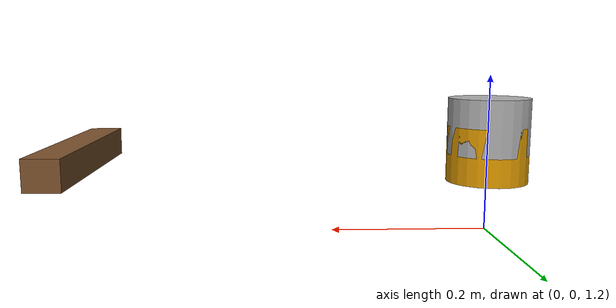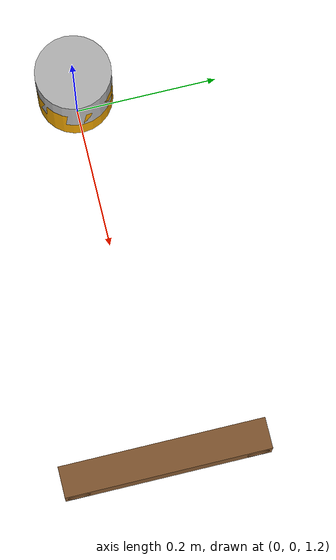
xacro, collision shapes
<?xml version="1.0"?>
<robot xmlns:xacro="http://www.ros.org/wiki/xacro" name="velodyne_xb3">
    <!-- property -->
    <xacro:property name="M_PI" value="3.1415926535897931" />

    <!-- velodyne:  vlp16 hdl32 hdl64 -->
    <xacro:arg name="velodyne" default="vlp16"/>
    <xacro:arg name="velodyne_x" default="0.0"/>
    <xacro:arg name="velodyne_y" default="0.0"/>
    <xacro:arg name="velodyne_z" default="1.3"/>
    <xacro:arg name="velodyne_roll" default="0.0"/>
    <xacro:arg name="velodyne_pitch" default="0.0"/>
    <xacro:arg name="velodyne_yaw" default="0.0"/>

    <xacro:arg name="K" default="0"/>
    <xacro:arg name="rate" default="10"/>
    <xacro:property name="K" default="$(arg K)"/>
    <xacro:property name="noise" value="${K * 0.000}" />

    <!-- xb3 -->
    <xacro:arg name="xb3_x" default="0.5"/>
    <xacro:arg name="xb3_y" default="0.0"/>
    <xacro:arg name="xb3_z" default="1.3"/>
    <xacro:arg name="xb3_roll" default="0.0"/>
    <xacro:arg name="xb3_pitch" default="0.0"/>
    <xacro:arg name="xb3_yaw" default="0.0"/>

    <!-- base -->
    <link name="world"/>

    <joint name="fixed" type="fixed">
        <parent link="world"/>
        <child link="base_link"/>
    </joint>

    <link name="base_link"/>

    <!-- xb3 -->
    <xacro:include filename="$(find sensors_description)/urdf/bumblebee_xb3.urdf.xacro"/>
    <xacro:xb3_camera parent="base_link" camera_name="xb3" noise="0.007">
        <origin xyz="$(arg xb3_x) $(arg xb3_y) $(arg xb3_z)" rpy="$(arg xb3_roll) $(arg xb3_pitch) $(arg xb3_yaw)" />
    </xacro:xb3_camera>

    <!-- velodyne -->
    <xacro:include filename="$(find sensors_description)/urdf/$(arg velodyne).urdf.xacro"/>
    <xacro:velodyne parent="base_link" name="$(arg velodyne)" topic="velodyne_points" rate="$(arg rate)" noise="${noise}">
        <origin xyz="$(arg velodyne_x) $(arg velodyne_y) $(arg velodyne_z)" rpy="$(arg velodyne_roll) $(arg velodyne_pitch) $(arg velodyne_yaw)" />
    </xacro:velodyne>

</robot>

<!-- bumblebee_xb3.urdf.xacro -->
<robot xmlns:xacro="http://www.ros.org/wiki/xacro" name="bumblebee_xb3">

    <!-- Properties -->
    <xacro:property name="baseline" value="0.12" />
    <xacro:property name="hfov" value="43.0000245" />
    <xacro:property name="M_PI"     value="3.1415926535897931" />

    <!-- Includes -->
    <xacro:include filename="$(find sensors_description)/materials/materials.xacro" />

    <!-- Macro -->
<xacro:macro name="xb3_camera" params="*origin parent:=base_frame camera_name:=bumblebee_xb3 image_width:=1280 image_height:=960 hz:=10 image_format:=B8G8R8 noise:=0.0">

    <!-- Camera body -->
    <joint name="${camera_name}_base_joint" type="fixed">
        <parent link="${parent}"/>
        <child link="${camera_name}_body"/>
        <xacro:insert_block name="origin" />
    </joint>

    <link name="${camera_name}_body">
        <inertial>
            <origin
            xyz="0.020768 7.8916E-18 2.5641E-17"
            rpy="0 0 0" />
        <mass
            value="0.20853" />
        <inertia
            ixx="0.0013461"
            ixy="-2.3692E-21"
            ixz="2.8955E-21"
            iyy="0.0013522"
            iyz="-5.06773623737804E-20"
            izz="5.3883E-05" />
        </inertial>
        <visual>
            <origin xyz="0 0 0" rpy="0 0 0"/>
            <geometry>
                <mesh filename="package://sensors_description/meshes/xb3.stl" />
            </geometry>
            <material name="brown" />
        </visual>
        <collision>
            <origin rpy="0 0 0" xyz="0 0 0"/>
            <geometry>
                <mesh filename="package://sensors_description/meshes/xb3.stl" />
            </geometry>
        </collision>
    </link>

    <gazebo reference="${camera_name}_body">
        <material>Gazebo/Black</material>
    </gazebo>

    <!-- Left Camera -->
    <joint name="${camera_name}_left_camera_joint" type="fixed">
        <parent link="${camera_name}_body"/>
        <child link="${camera_name}_left_frame"/>
        <origin xyz="0 ${baseline/2} 0" rpy="0.0 0.0 0.0" />
    </joint>

    <link name="${camera_name}_left_frame" />

    <joint name="${camera_name}_left_optical_joint" type="fixed">
      <origin xyz="0 0 0" rpy="${-M_PI/2} 0.0 ${-M_PI/2}" />
      <parent link="${camera_name}_left_frame" />
      <child link="${camera_name}_left_optical_frame"/>
    </joint>

    <link name="${camera_name}_left_optical_frame" />

    <!-- Right Camera -->
    <joint name="${camera_name}_right_camera_joint" type="fixed">
        <parent link="${camera_name}_body"/>
        <child link="${camera_name}_right_frame"/>
        <origin xyz="0 -${baseline/2} 0" rpy="0.0 0.0 0.0" />
    </joint>

    <link name="${camera_name}_right_frame" />

    <joint name="${camera_name}_right_optical_joint" type="fixed">
      <origin xyz="0 0 0" rpy="${-M_PI/2} 0.0 ${-M_PI/2}" />
      <parent link="${camera_name}_right_frame" />
      <child link="${camera_name}_right_optical_frame"/>
    </joint>

    <link name="${camera_name}_right_optical_frame" />

    <gazebo reference="${camera_name}_left_frame">
        <sensor type="multicamera" name="${camera_name}">
            <always_on>true</always_on>
            <update_rate>${hz}</update_rate>
            <camera name="left">
                <horizontal_fov>${hfov*M_PI/180.0}</horizontal_fov>
                <image>
                    <format>${image_format}</format>
                    <width>${image_width}</width>
                    <height>${image_height}</height>
                </image>
                <clip>
                    <near>0.02</near>
                    <far>300</far>
                </clip>
                <noise>
                    <type>gaussian</type>
                    <mean>0.0</mean>
                    <stddev>${noise}</stddev>
                </noise>
            </camera>
            <camera name="right">
                <pose>0 -0.12 0 0 0 0</pose>
                <horizontal_fov>${hfov*M_PI/180.0}</horizontal_fov>
                <image>
                    <format>${image_format}</format>
                    <width>${image_width}</width>
                    <height>${image_height}</height>
                </image>
                <clip>
                    <near>0.02</near>
                    <far>300</far>
                </clip>
                <noise>
                    <type>gaussian</type>
                    <mean>0.0</mean>
                    <stddev>${noise}</stddev>
                </noise>
            </camera>
            <plugin name="stereo_camera_controller" filename="libgazebo_ros_multicamera.so">
                <updateRate>0.0</updateRate>
                <cameraName>stereo_camera</cameraName>
                <imageTopicName>image_rect_color</imageTopicName>
                <cameraInfoTopicName>camera_info</cameraInfoTopicName>
                <frameName>${camera_name}_left_optical_frame</frameName>
                <Cx>639.515381</Cx>
                <Cy>479.500000</Cy>
                <hackBaseline>0.12</hackBaseline>
                <distortionK1>0.0</distortionK1>
                <distortionK2>0.0</distortionK2>
                <distortionK3>0.0</distortionK3>
                <distortionT1>0.0</distortionT1>
                <distortionT2>0.0</distortionT2>
            </plugin>
        </sensor>
    </gazebo>

</xacro:macro>
</robot>

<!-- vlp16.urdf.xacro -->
<robot xmlns:xacro="http://www.ros.org/wiki/xacro" name="velodyne">
  <!-- Properties -->
  <xacro:property name="M_PI" value="3.1415926535897931" />

  <xacro:macro name="velodyne" params="*origin parent:=base_link name:=velodyne topic:=velodyne_points rate:=10 noise:=0.008">

    <xacro:if value="${rate==10}">
      <xacro:property name="samples" default="1875"/>
    </xacro:if>

    <xacro:if value="${rate==5}">
      <xacro:property name="samples" default="3750"/>
    </xacro:if>

    <joint name="${name}_base_mount_joint" type="fixed">
      <xacro:insert_block name="origin" />
      <parent link="${parent}"/>
      <child link="${name}_base_link"/>
    </joint>

    <link name="${name}_base_link">
      <inertial>
        <mass value="0.83"/>
        <origin xyz="0 0 0.03585"/>
        <inertia ixx="${(0.83 * (3.0*0.0516*0.0516 + 0.0717*0.0717)) / 12.0}" ixy="0" ixz="0"
          iyy="${(0.83 * (3.0*0.0516*0.0516 + 0.0717*0.0717)) / 12.0}" iyz="0"
          izz="${0.5 * 0.83 * (0.0516*0.0516)}"/>
      </inertial>
      <visual>
        <geometry>
          <mesh filename="package://sensors_description/meshes/VLP16_base_1.dae" />
        </geometry>
      </visual>
      <visual>
        <geometry>
          <mesh filename="package://sensors_description/meshes/VLP16_base_2.dae" />
        </geometry>
      </visual>
      <collision>
        <origin rpy="0 0 0" xyz="0 0 0.03585"/>
        <geometry>
          <cylinder radius="0.0516" length="0.0717"/>
        </geometry>
      </collision>
    </link>

    <joint name="${name}_base_scan_joint" type="fixed" >
      <origin xyz="0 0 0.0377" rpy="0 0 0" />
      <parent link="${name}_base_link" />
      <child link="${name}_frame"/>
    </joint>

    <link name="${name}_frame">
      <inertial>
        <mass value="0.01"/>
        <origin xyz="0 0 0"/>
        <inertia ixx="1e-7" ixy="0" ixz="0" iyy="1e-7" iyz="0" izz="1e-7"/>
      </inertial>
      <visual>
        <origin xyz="0 0 -0.0377" />
        <geometry>
          <mesh filename="package://sensors_description/meshes/VLP16_scan.dae" />
        </geometry>
      </visual>
      <collision>
        <origin rpy="0 0 0" xyz="0 0 -0.0377"/>
        <geometry>
          <cylinder radius="0.0516" length="0.0717"/>
        </geometry>
      </collision>
    </link>

    <!-- Gazebo requires the velodyne_gazebo_plugins package -->
    <gazebo reference="${name}_frame">
        <sensor type="ray" name="Velodyne-${name}">
          <pose>0 0 0 0 0 0</pose>
          <visualize>false</visualize>
          <update_rate>${rate}</update_rate>
          <ray>
            <scan>
              <horizontal>
                <samples>${samples}</samples>
                <resolution>1</resolution>
                <min_angle>-3.14159</min_angle>
                <max_angle>3.14159</max_angle>
              </horizontal>
              <vertical>
                <samples>16</samples>
                <resolution>1</resolution>
                <min_angle>-${15*M_PI/180.0}</min_angle>
                <max_angle>${15*M_PI/180.0}</max_angle>
              </vertical>
            </scan>
            <range>
              <min>0.9</min>
              <max>100</max>
              <resolution>0.03</resolution>
            </range>
            <noise>
              <type>gaussian</type>
              <mean>0.0</mean>
              <stddev>0.0</stddev>
            </noise>
          </ray>
          <plugin name="gazebo_ros_laser_controller" filename="libgazebo_ros_velodyne_laser.so">
            <topicName>${topic}</topicName>
            <frameName>${name}_frame</frameName>
            <min_range>0.9</min_range>
            <max_range>100</max_range>
            <gaussianNoise>${noise}</gaussianNoise>
          </plugin>
        </sensor>
    </gazebo>
  </xacro:macro>
</robot>
